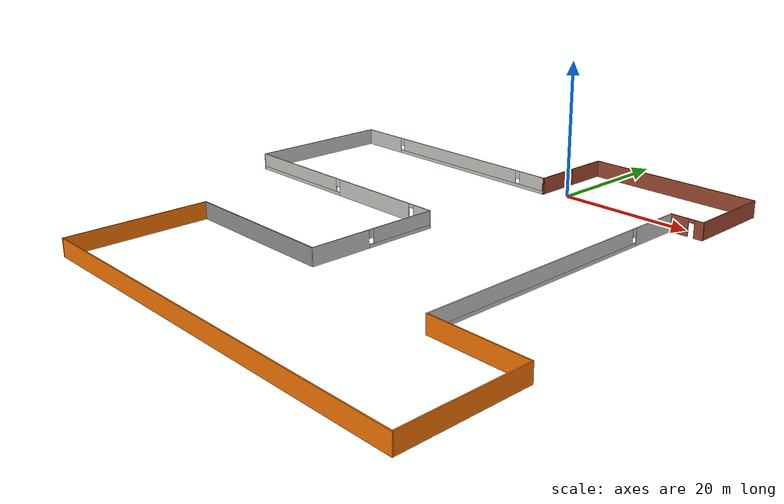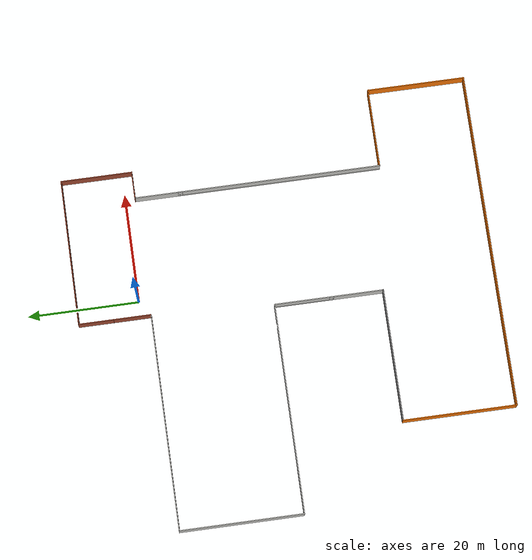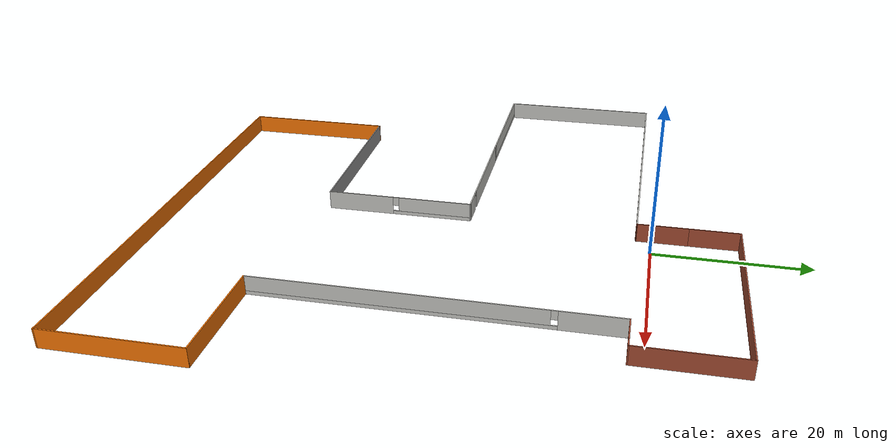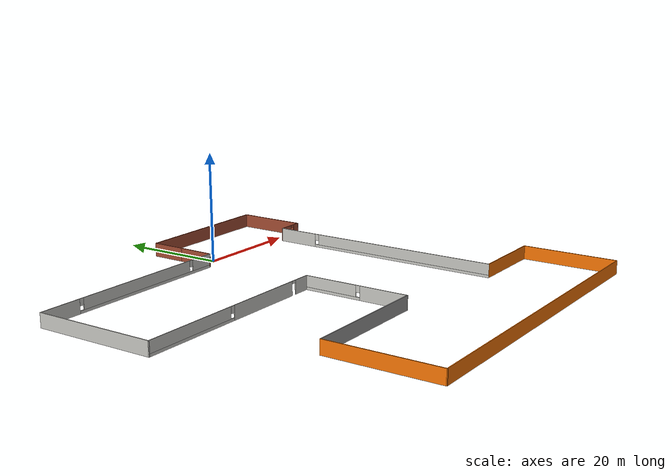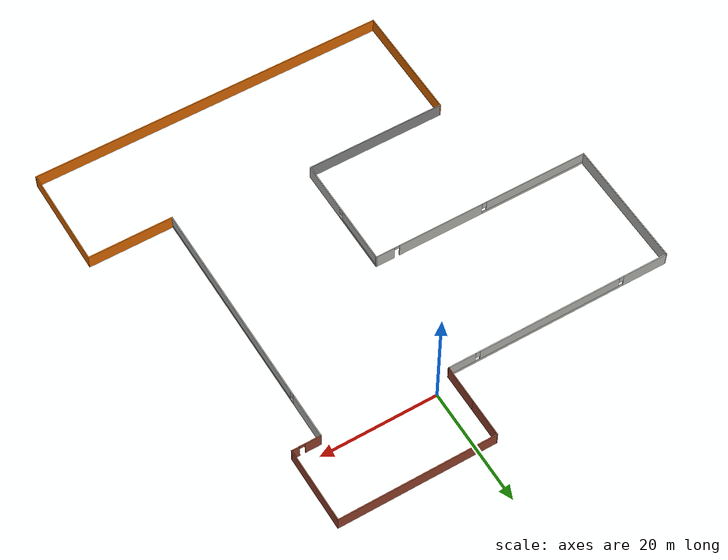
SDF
<?xml version='1.0'?>
<sdf version='1.6'>
  <model name='Firstfloor'>
    <pose frame=''>-4.49 -26.435 0 0 -0 0</pose>
    <link name='Wall_0'>
      <collision name='Wall_0_Collision'>
        <geometry>
          <box>
            <size>6.75 0.15 2.5</size>
          </box>
        </geometry>
        <pose frame=''>0 0 1.25 0 -0 0</pose>
      </collision>
      <visual name='Wall_0_Visual'>
        <pose frame=''>0 0 1.25 0 -0 0</pose>
        <geometry>
          <box>
            <size>6.75 0.15 2.5</size>
          </box>
        </geometry>
        <material>
          <script>
            <uri>file://media/materials/scripts/gazebo.material</uri>
            <name>Gazebo/Bricks</name>
          </script>
          <ambient>1 1 1 1</ambient>
        </material>
        <meta>
          <layer>0</layer>
        </meta>
      </visual>
      <pose frame=''>1.45 27.875 0 0 -0 1.5708</pose>
    </link>
    <link name='Wall_1'>
      <collision name='Wall_1_Collision'>
        <geometry>
          <box>
            <size>6.5 0.15 2.5</size>
          </box>
        </geometry>
        <pose frame=''>0 0 1.25 0 -0 0</pose>
      </collision>
      <visual name='Wall_1_Visual'>
        <pose frame=''>0 0 1.25 0 -0 0</pose>
        <geometry>
          <box>
            <size>6.5 0.15 2.5</size>
          </box>
        </geometry>
        <material>
          <script>
            <uri>file://media/materials/scripts/gazebo.material</uri>
            <name>Gazebo/Bricks</name>
          </script>
          <ambient>1 1 1 1</ambient>
        </material>
        <meta>
          <layer>0</layer>
        </meta>
      </visual>
      <pose frame=''>1.45 34.35 0 0 -0 1.5708</pose>
    </link>
    <link name='Wall_10'>
      <collision name='Wall_10_Collision'>
        <geometry>
          <box>
            <size>24 0.15 2.5</size>
          </box>
        </geometry>
        <pose frame=''>0 0 1.25 0 -0 0</pose>
      </collision>
      <visual name='Wall_10_Visual'>
        <pose frame=''>0 0 1.25 0 -0 0</pose>
        <geometry>
          <box>
            <size>24 0.15 2.5</size>
          </box>
        </geometry>
        <material>
          <script>
            <uri>file://media/materials/scripts/gazebo.material</uri>
            <name>Gazebo/Grey</name>
          </script>
          <ambient>1 1 1 1</ambient>
        </material>
        <meta>
          <layer>0</layer>
        </meta>
      </visual>
      <pose frame=''>-11.625 -17.175 0 0 -0 0</pose>
    </link>
    <link name='Wall_11'>
      <pose frame=''>0.3 -7.375 0 0 -0 1.5708</pose>
      <visual name='Wall_11_Visual_0'>
        <pose frame=''>-5.38328 0 1.25 0 -0 0</pose>
        <geometry>
          <box>
            <size>8.98345 0.15 2.5</size>
          </box>
        </geometry>
        <material>
          <script>
            <uri>file://media/materials/scripts/gazebo.material</uri>
            <name>Gazebo/CeilingTiled</name>
          </script>
          <ambient>1 1 1 1</ambient>
        </material>
        <meta>
          <layer>0</layer>
        </meta>
      </visual>
      <collision name='Wall_11_Collision_0'>
        <geometry>
          <box>
            <size>8.98345 0.15 2.5</size>
          </box>
        </geometry>
        <pose frame=''>-5.38328 0 1.25 0 -0 0</pose>
      </collision>
      <visual name='Wall_11_Visual_1'>
        <pose frame=''>4.49172 0 0.25 0 -0 0</pose>
        <geometry>
          <box>
            <size>10.7666 0.15 0.5</size>
          </box>
        </geometry>
        <material>
          <script>
            <uri>file://media/materials/scripts/gazebo.material</uri>
            <name>Gazebo/CeilingTiled</name>
          </script>
          <ambient>1 1 1 1</ambient>
        </material>
        <meta>
          <layer>0</layer>
        </meta>
      </visual>
      <collision name='Wall_11_Collision_1'>
        <geometry>
          <box>
            <size>10.7666 0.15 0.5</size>
          </box>
        </geometry>
        <pose frame=''>4.49172 0 0.25 0 -0 0</pose>
      </collision>
      <visual name='Wall_11_Visual_2'>
        <pose frame=''>4.89173 0 1.5 0 -0 0</pose>
        <geometry>
          <box>
            <size>9.96655 0.15 2</size>
          </box>
        </geometry>
        <material>
          <script>
            <uri>file://media/materials/scripts/gazebo.material</uri>
            <name>Gazebo/CeilingTiled</name>
          </script>
          <ambient>1 1 1 1</ambient>
        </material>
        <meta>
          <layer>0</layer>
        </meta>
      </visual>
      <collision name='Wall_11_Collision_2'>
        <geometry>
          <box>
            <size>9.96655 0.15 2</size>
          </box>
        </geometry>
        <pose frame=''>4.89173 0 1.5 0 -0 0</pose>
      </collision>
      <visual name='Wall_11_Visual_3'>
        <pose frame=''>-0.49155 0 1.9 0 -0 0</pose>
        <geometry>
          <box>
            <size>0.8 0.15 1.2</size>
          </box>
        </geometry>
        <material>
          <script>
            <uri>file://media/materials/scripts/gazebo.material</uri>
            <name>Gazebo/CeilingTiled</name>
          </script>
          <ambient>1 1 1 1</ambient>
        </material>
        <meta>
          <layer>0</layer>
        </meta>
      </visual>
      <collision name='Wall_11_Collision_3'>
        <geometry>
          <box>
            <size>0.8 0.15 1.2</size>
          </box>
        </geometry>
        <pose frame=''>-0.49155 0 1.9 0 -0 0</pose>
      </collision>
    </link>
    <link name='Wall_12'>
      <pose frame=''>-18.625 2.425 0 0 -0 3.14159</pose>
      <visual name='Wall_12_Visual_0'>
        <pose frame=''>-17.3553 0 1.25 0 -0 0</pose>
        <geometry>
          <box>
            <size>3.28937 0.15 2.5</size>
          </box>
        </geometry>
        <material>
          <script>
            <uri>file://media/materials/scripts/gazebo.material</uri>
            <name>Gazebo/CeilingTiled</name>
          </script>
          <ambient>1 1 1 1</ambient>
        </material>
        <meta>
          <layer>0</layer>
        </meta>
      </visual>
      <collision name='Wall_12_Collision_0'>
        <geometry>
          <box>
            <size>3.28937 0.15 2.5</size>
          </box>
        </geometry>
        <pose frame=''>-17.3553 0 1.25 0 -0 0</pose>
      </collision>
      <visual name='Wall_12_Visual_1'>
        <pose frame=''>-7.35452 0 1.25 0 -0 0</pose>
        <geometry>
          <box>
            <size>14.9122 0.15 2.5</size>
          </box>
        </geometry>
        <material>
          <script>
            <uri>file://media/materials/scripts/gazebo.material</uri>
            <name>Gazebo/CeilingTiled</name>
          </script>
          <ambient>1 1 1 1</ambient>
        </material>
        <meta>
          <layer>0</layer>
        </meta>
      </visual>
      <collision name='Wall_12_Collision_1'>
        <geometry>
          <box>
            <size>14.9122 0.15 2.5</size>
          </box>
        </geometry>
        <pose frame=''>-7.35452 0 1.25 0 -0 0</pose>
      </collision>
      <visual name='Wall_12_Visual_2'>
        <pose frame=''>9.5508 0 0.25 0 -0 0</pose>
        <geometry>
          <box>
            <size>18.8984 0.15 0.5</size>
          </box>
        </geometry>
        <material>
          <script>
            <uri>file://media/materials/scripts/gazebo.material</uri>
            <name>Gazebo/CeilingTiled</name>
          </script>
          <ambient>1 1 1 1</ambient>
        </material>
        <meta>
          <layer>0</layer>
        </meta>
      </visual>
      <collision name='Wall_12_Collision_2'>
        <geometry>
          <box>
            <size>18.8984 0.15 0.5</size>
          </box>
        </geometry>
        <pose frame=''>9.5508 0 0.25 0 -0 0</pose>
      </collision>
      <visual name='Wall_12_Visual_3'>
        <pose frame=''>9.95079 0 1.5 0 -0 0</pose>
        <geometry>
          <box>
            <size>18.0984 0.15 2</size>
          </box>
        </geometry>
        <material>
          <script>
            <uri>file://media/materials/scripts/gazebo.material</uri>
            <name>Gazebo/CeilingTiled</name>
          </script>
          <ambient>1 1 1 1</ambient>
        </material>
        <meta>
          <layer>0</layer>
        </meta>
      </visual>
      <collision name='Wall_12_Collision_3'>
        <geometry>
          <box>
            <size>18.0984 0.15 2</size>
          </box>
        </geometry>
        <pose frame=''>9.95079 0 1.5 0 -0 0</pose>
      </collision>
      <visual name='Wall_12_Visual_4'>
        <pose frame=''>0.501591 0 1.9 0 -0 0</pose>
        <geometry>
          <box>
            <size>0.8 0.15 1.2</size>
          </box>
        </geometry>
        <material>
          <script>
            <uri>file://media/materials/scripts/gazebo.material</uri>
            <name>Gazebo/CeilingTiled</name>
          </script>
          <ambient>1 1 1 1</ambient>
        </material>
        <meta>
          <layer>0</layer>
        </meta>
      </visual>
      <collision name='Wall_12_Collision_4'>
        <geometry>
          <box>
            <size>0.8 0.15 1.2</size>
          </box>
        </geometry>
        <pose frame=''>0.501591 0 1.9 0 -0 0</pose>
      </collision>
      <visual name='Wall_12_Visual_5'>
        <pose frame=''>-15.2606 0 2.25 0 -0 0</pose>
        <geometry>
          <box>
            <size>0.9 0.15 0.5</size>
          </box>
        </geometry>
        <material>
          <script>
            <uri>file://media/materials/scripts/gazebo.material</uri>
            <name>Gazebo/CeilingTiled</name>
          </script>
          <ambient>1 1 1 1</ambient>
        </material>
        <meta>
          <layer>0</layer>
        </meta>
      </visual>
      <collision name='Wall_12_Collision_5'>
        <geometry>
          <box>
            <size>0.9 0.15 0.5</size>
          </box>
        </geometry>
        <pose frame=''>-15.2606 0 2.25 0 -0 0</pose>
      </collision>
    </link>
    <link name='Wall_13'>
      <collision name='Wall_13_Collision'>
        <geometry>
          <box>
            <size>22.25 0.15 2.5</size>
          </box>
        </geometry>
        <pose frame=''>0 0 1.25 0 -0 0</pose>
      </collision>
      <visual name='Wall_13_Visual'>
        <pose frame=''>0 0 1.25 0 -0 0</pose>
        <geometry>
          <box>
            <size>22.25 0.15 2.5</size>
          </box>
        </geometry>
        <material>
          <script>
            <uri>file://media/materials/scripts/gazebo.material</uri>
            <name>Gazebo/CeilingTiled</name>
          </script>
          <ambient>1 1 1 1</ambient>
        </material>
        <meta>
          <layer>0</layer>
        </meta>
      </visual>
      <pose frame=''>-37.55 13.475 0 0 -0 1.5708</pose>
    </link>
    <link name='Wall_14'>
      <pose frame=''>-18.125 24.525 0 0 -0 0</pose>
      <visual name='Wall_14_Visual_0'>
        <pose frame=''>-15.5453 0 1.25 0 -0 0</pose>
        <geometry>
          <box>
            <size>7.90934 0.15 2.5</size>
          </box>
        </geometry>
        <material>
          <script>
            <uri>file://media/materials/scripts/gazebo.material</uri>
            <name>Gazebo/CeilingTiled</name>
          </script>
          <ambient>1 1 1 1</ambient>
        </material>
        <meta>
          <layer>0</layer>
        </meta>
      </visual>
      <collision name='Wall_14_Collision_0'>
        <geometry>
          <box>
            <size>7.90934 0.15 2.5</size>
          </box>
        </geometry>
        <pose frame=''>-15.5453 0 1.25 0 -0 0</pose>
      </collision>
      <visual name='Wall_14_Visual_1'>
        <pose frame=''>3.95467 0 0.25 0 -0 0</pose>
        <geometry>
          <box>
            <size>31.0907 0.15 0.5</size>
          </box>
        </geometry>
        <material>
          <script>
            <uri>file://media/materials/scripts/gazebo.material</uri>
            <name>Gazebo/CeilingTiled</name>
          </script>
          <ambient>1 1 1 1</ambient>
        </material>
        <meta>
          <layer>0</layer>
        </meta>
      </visual>
      <collision name='Wall_14_Collision_1'>
        <geometry>
          <box>
            <size>31.0907 0.15 0.5</size>
          </box>
        </geometry>
        <pose frame=''>3.95467 0 0.25 0 -0 0</pose>
      </collision>
      <visual name='Wall_14_Visual_2'>
        <pose frame=''>1.64004 0 1.5 0 -0 0</pose>
        <geometry>
          <box>
            <size>24.8614 0.15 2</size>
          </box>
        </geometry>
        <material>
          <script>
            <uri>file://media/materials/scripts/gazebo.material</uri>
            <name>Gazebo/CeilingTiled</name>
          </script>
          <ambient>1 1 1 1</ambient>
        </material>
        <meta>
          <layer>0</layer>
        </meta>
      </visual>
      <collision name='Wall_14_Collision_2'>
        <geometry>
          <box>
            <size>24.8614 0.15 2</size>
          </box>
        </geometry>
        <pose frame=''>1.64004 0 1.5 0 -0 0</pose>
      </collision>
      <visual name='Wall_14_Visual_3'>
        <pose frame=''>17.1854 0 1.5 0 -0 0</pose>
        <geometry>
          <box>
            <size>4.62927 0.15 2</size>
          </box>
        </geometry>
        <material>
          <script>
            <uri>file://media/materials/scripts/gazebo.material</uri>
            <name>Gazebo/CeilingTiled</name>
          </script>
          <ambient>1 1 1 1</ambient>
        </material>
        <meta>
          <layer>0</layer>
        </meta>
      </visual>
      <collision name='Wall_14_Collision_3'>
        <geometry>
          <box>
            <size>4.62927 0.15 2</size>
          </box>
        </geometry>
        <pose frame=''>17.1854 0 1.5 0 -0 0</pose>
      </collision>
      <visual name='Wall_14_Visual_4'>
        <pose frame=''>-11.1907 0 1.9 0 -0 0</pose>
        <geometry>
          <box>
            <size>0.8 0.15 1.2</size>
          </box>
        </geometry>
        <material>
          <script>
            <uri>file://media/materials/scripts/gazebo.material</uri>
            <name>Gazebo/CeilingTiled</name>
          </script>
          <ambient>1 1 1 1</ambient>
        </material>
        <meta>
          <layer>0</layer>
        </meta>
      </visual>
      <collision name='Wall_14_Collision_4'>
        <geometry>
          <box>
            <size>0.8 0.15 1.2</size>
          </box>
        </geometry>
        <pose frame=''>-11.1907 0 1.9 0 -0 0</pose>
      </collision>
      <visual name='Wall_14_Visual_5'>
        <pose frame=''>14.4707 0 1.9 0 -0 0</pose>
        <geometry>
          <box>
            <size>0.8 0.15 1.2</size>
          </box>
        </geometry>
        <material>
          <script>
            <uri>file://media/materials/scripts/gazebo.material</uri>
            <name>Gazebo/CeilingTiled</name>
          </script>
          <ambient>1 1 1 1</ambient>
        </material>
        <meta>
          <layer>0</layer>
        </meta>
      </visual>
      <collision name='Wall_14_Collision_5'>
        <geometry>
          <box>
            <size>0.8 0.15 1.2</size>
          </box>
        </geometry>
        <pose frame=''>14.4707 0 1.9 0 -0 0</pose>
      </collision>
    </link>
    <link name='Wall_16'>
      <collision name='Wall_16_Collision'>
        <geometry>
          <box>
            <size>0.308114 0.15 2.5</size>
          </box>
        </geometry>
        <pose frame=''>0 0 1.25 0 -0 0</pose>
      </collision>
      <visual name='Wall_16_Visual'>
        <pose frame=''>0 0 1.25 0 -0 0</pose>
        <geometry>
          <box>
            <size>0.308114 0.15 2.5</size>
          </box>
        </geometry>
        <material>
          <script>
            <uri>file://media/materials/scripts/gazebo.material</uri>
            <name>Gazebo/Bricks</name>
          </script>
          <ambient>1 1 1 1</ambient>
        </material>
        <meta>
          <layer>0</layer>
        </meta>
      </visual>
      <pose frame=''>1.375 24.55 0 0 -0 0.321751</pose>
    </link>
    <link name='Wall_2'>
      <collision name='Wall_2_Collision'>
        <geometry>
          <box>
            <size>26.75 0.15 2.5</size>
          </box>
        </geometry>
        <pose frame=''>0 0 1.25 0 -0 0</pose>
      </collision>
      <visual name='Wall_2_Visual'>
        <pose frame=''>0 0 1.25 0 -0 0</pose>
        <geometry>
          <box>
            <size>26.75 0.15 2.5</size>
          </box>
        </geometry>
        <material>
          <script>
            <uri>file://media/materials/scripts/gazebo.material</uri>
            <name>Gazebo/Bricks</name>
          </script>
          <ambient>1 1 1 1</ambient>
        </material>
        <meta>
          <layer>0</layer>
        </meta>
      </visual>
      <pose frame=''>14.75 37.525 0 0 -0 0</pose>
    </link>
    <link name='Wall_3'>
      <collision name='Wall_3_Collision'>
        <geometry>
          <box>
            <size>13 0.15 2.5</size>
          </box>
        </geometry>
        <pose frame=''>0 0 1.25 0 -0 0</pose>
      </collision>
      <visual name='Wall_3_Visual'>
        <pose frame=''>0 0 1.25 0 -0 0</pose>
        <geometry>
          <box>
            <size>13 0.15 2.5</size>
          </box>
        </geometry>
        <material>
          <script>
            <uri>file://media/materials/scripts/gazebo.material</uri>
            <name>Gazebo/Bricks</name>
          </script>
          <ambient>1 1 1 1</ambient>
        </material>
        <meta>
          <layer>0</layer>
        </meta>
      </visual>
      <pose frame=''>28.05 31.1 0 0 0 -1.5708</pose>
    </link>
    <link name='Wall_4'>
      <pose frame=''>25.625 24.675 0 0 -0 3.14159</pose>
      <visual name='Wall_4_Visual_0'>
        <pose frame=''>-1.81649 0 1.25 0 -0 0</pose>
        <geometry>
          <box>
            <size>1.36703 0.15 2.5</size>
          </box>
        </geometry>
        <material>
          <script>
            <uri>file://media/materials/scripts/gazebo.material</uri>
            <name>Gazebo/Bricks</name>
          </script>
          <ambient>1 1 1 1</ambient>
        </material>
        <meta>
          <layer>0</layer>
        </meta>
      </visual>
      <collision name='Wall_4_Collision_0'>
        <geometry>
          <box>
            <size>1.36703 0.15 2.5</size>
          </box>
        </geometry>
        <pose frame=''>-1.81649 0 1.25 0 -0 0</pose>
      </collision>
      <visual name='Wall_4_Visual_1'>
        <pose frame=''>1.13351 0 1.25 0 -0 0</pose>
        <geometry>
          <box>
            <size>2.73297 0.15 2.5</size>
          </box>
        </geometry>
        <material>
          <script>
            <uri>file://media/materials/scripts/gazebo.material</uri>
            <name>Gazebo/Bricks</name>
          </script>
          <ambient>1 1 1 1</ambient>
        </material>
        <meta>
          <layer>0</layer>
        </meta>
      </visual>
      <collision name='Wall_4_Collision_1'>
        <geometry>
          <box>
            <size>2.73297 0.15 2.5</size>
          </box>
        </geometry>
        <pose frame=''>1.13351 0 1.25 0 -0 0</pose>
      </collision>
      <visual name='Wall_4_Visual_2'>
        <pose frame=''>-0.682972 0 2.25 0 -0 0</pose>
        <geometry>
          <box>
            <size>0.9 0.15 0.5</size>
          </box>
        </geometry>
        <material>
          <script>
            <uri>file://media/materials/scripts/gazebo.material</uri>
            <name>Gazebo/Bricks</name>
          </script>
          <ambient>1 1 1 1</ambient>
        </material>
        <meta>
          <layer>0</layer>
        </meta>
      </visual>
      <collision name='Wall_4_Collision_2'>
        <geometry>
          <box>
            <size>0.9 0.15 0.5</size>
          </box>
        </geometry>
        <pose frame=''>-0.682972 0 2.25 0 -0 0</pose>
      </collision>
    </link>
    <link name='Wall_5'>
      <pose frame=''>23.2 2.375 0 0 0 -1.5708</pose>
      <visual name='Wall_5_Visual_0'>
        <pose frame=''>-18.4256 0 1.25 0 -0 0</pose>
        <geometry>
          <box>
            <size>7.89886 0.15 2.5</size>
          </box>
        </geometry>
        <material>
          <script>
            <uri>file://media/materials/scripts/gazebo.material</uri>
            <name>Gazebo/CeilingTiled</name>
          </script>
          <ambient>1 1 1 1</ambient>
        </material>
        <meta>
          <layer>0</layer>
        </meta>
      </visual>
      <collision name='Wall_5_Collision_0'>
        <geometry>
          <box>
            <size>7.89886 0.15 2.5</size>
          </box>
        </geometry>
        <pose frame=''>-18.4256 0 1.25 0 -0 0</pose>
      </collision>
      <visual name='Wall_5_Visual_1'>
        <pose frame=''>3.94943 0 0.25 0 -0 0</pose>
        <geometry>
          <box>
            <size>36.8511 0.15 0.5</size>
          </box>
        </geometry>
        <material>
          <script>
            <uri>file://media/materials/scripts/gazebo.material</uri>
            <name>Gazebo/CeilingTiled</name>
          </script>
          <ambient>1 1 1 1</ambient>
        </material>
        <meta>
          <layer>0</layer>
        </meta>
      </visual>
      <collision name='Wall_5_Collision_1'>
        <geometry>
          <box>
            <size>36.8511 0.15 0.5</size>
          </box>
        </geometry>
        <pose frame=''>3.94943 0 0.25 0 -0 0</pose>
      </collision>
      <visual name='Wall_5_Visual_2'>
        <pose frame=''>4.34943 0 1.5 0 -0 0</pose>
        <geometry>
          <box>
            <size>36.0511 0.15 2</size>
          </box>
        </geometry>
        <material>
          <script>
            <uri>file://media/materials/scripts/gazebo.material</uri>
            <name>Gazebo/CeilingTiled</name>
          </script>
          <ambient>1 1 1 1</ambient>
        </material>
        <meta>
          <layer>0</layer>
        </meta>
      </visual>
      <collision name='Wall_5_Collision_2'>
        <geometry>
          <box>
            <size>36.0511 0.15 2</size>
          </box>
        </geometry>
        <pose frame=''>4.34943 0 1.5 0 -0 0</pose>
      </collision>
      <visual name='Wall_5_Visual_3'>
        <pose frame=''>-14.0761 0 1.9 0 -0 0</pose>
        <geometry>
          <box>
            <size>0.8 0.15 1.2</size>
          </box>
        </geometry>
        <material>
          <script>
            <uri>file://media/materials/scripts/gazebo.material</uri>
            <name>Gazebo/CeilingTiled</name>
          </script>
          <ambient>1 1 1 1</ambient>
        </material>
        <meta>
          <layer>0</layer>
        </meta>
      </visual>
      <collision name='Wall_5_Collision_3'>
        <geometry>
          <box>
            <size>0.8 0.15 1.2</size>
          </box>
        </geometry>
        <pose frame=''>-14.0761 0 1.9 0 -0 0</pose>
      </collision>
    </link>
    <link name='Wall_6'>
      <collision name='Wall_6_Collision'>
        <geometry>
          <box>
            <size>14.5 0.15 2.5</size>
          </box>
        </geometry>
        <pose frame=''>0 0 1.25 0 -0 0</pose>
      </collision>
      <visual name='Wall_6_Visual'>
        <pose frame=''>0 0 1.25 0 -0 0</pose>
        <geometry>
          <box>
            <size>14.5 0.15 2.5</size>
          </box>
        </geometry>
        <material>
          <script>
            <uri>file://media/materials/scripts/gazebo.material</uri>
            <name>Gazebo/Grey</name>
          </script>
          <ambient>0.996078 0.47451 0.0196078 1</ambient>
        </material>
        <meta>
          <layer>0</layer>
        </meta>
      </visual>
      <pose frame=''>30.375 -19.925 0 0 -0 0</pose>
    </link>
    <link name='Wall_7'>
      <collision name='Wall_7_Collision'>
        <geometry>
          <box>
            <size>17.75 0.15 2.5</size>
          </box>
        </geometry>
        <pose frame=''>0 0 1.25 0 -0 0</pose>
      </collision>
      <visual name='Wall_7_Visual'>
        <pose frame=''>0 0 1.25 0 -0 0</pose>
        <geometry>
          <box>
            <size>17.75 0.15 2.5</size>
          </box>
        </geometry>
        <material>
          <script>
            <uri>file://media/materials/scripts/gazebo.material</uri>
            <name>Gazebo/Grey</name>
          </script>
          <ambient>0.996078 0.47451 0.0196078 1</ambient>
        </material>
        <meta>
          <layer>0</layer>
        </meta>
      </visual>
      <pose frame=''>37.55 -28.725 0 0 0 -1.5708</pose>
    </link>
    <link name='Wall_8'>
      <collision name='Wall_8_Collision'>
        <geometry>
          <box>
            <size>61.25 0.15 2.5</size>
          </box>
        </geometry>
        <pose frame=''>0 0 1.25 0 -0 0</pose>
      </collision>
      <visual name='Wall_8_Visual'>
        <pose frame=''>0 0 1.25 0 -0 0</pose>
        <geometry>
          <box>
            <size>61.25 0.15 2.5</size>
          </box>
        </geometry>
        <material>
          <script>
            <uri>file://media/materials/scripts/gazebo.material</uri>
            <name>Gazebo/Grey</name>
          </script>
          <ambient>0.996078 0.47451 0.0196078 1</ambient>
        </material>
        <meta>
          <layer>0</layer>
        </meta>
      </visual>
      <pose frame=''>7 -37.525 0 0 -0 3.14159</pose>
    </link>
    <link name='Wall_9'>
      <collision name='Wall_9_Collision'>
        <geometry>
          <box>
            <size>20.5 0.15 2.5</size>
          </box>
        </geometry>
        <pose frame=''>0 0 1.25 0 -0 0</pose>
      </collision>
      <visual name='Wall_9_Visual'>
        <pose frame=''>0 0 1.25 0 -0 0</pose>
        <geometry>
          <box>
            <size>20.5 0.15 2.5</size>
          </box>
        </geometry>
        <material>
          <script>
            <uri>file://media/materials/scripts/gazebo.material</uri>
            <name>Gazebo/Grey</name>
          </script>
          <ambient>0.996078 0.47451 0.0196078 1</ambient>
        </material>
        <meta>
          <layer>0</layer>
        </meta>
      </visual>
      <pose frame=''>-23.55 -27.35 0 0 -0 1.5708</pose>
    </link>
    <static>1</static>
  </model>
</sdf>
